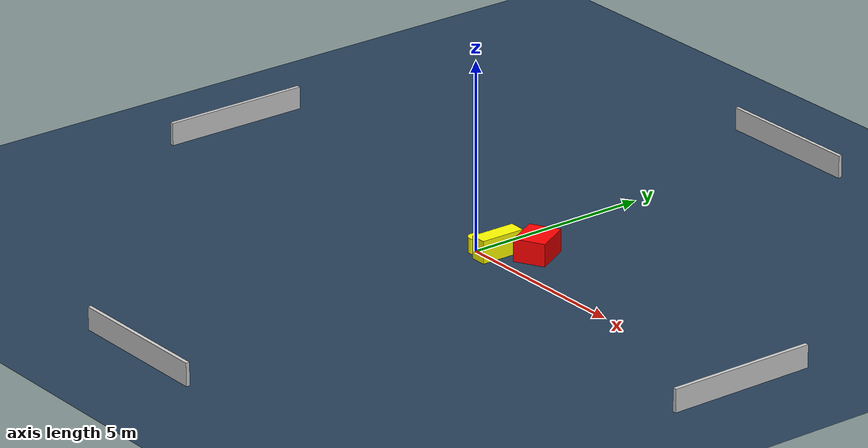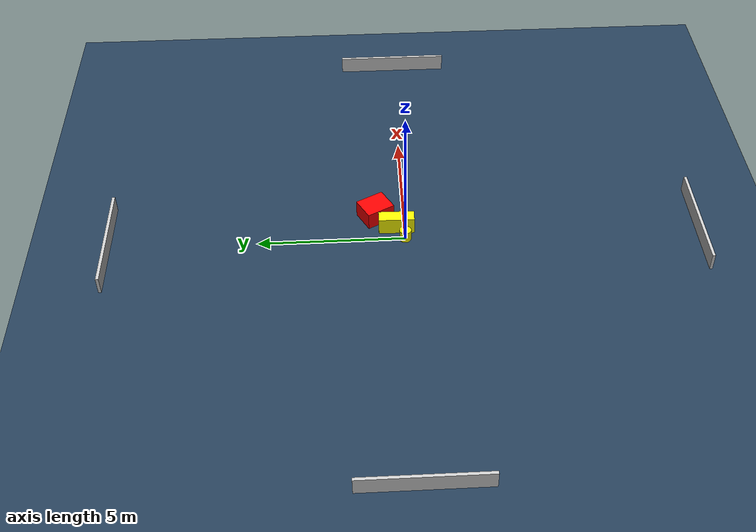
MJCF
<?xml version="1.0" ?>
<mujoco model="generated_environment">
  <option timestep="0.01" integrator="RK4" cone="elliptic"/>
  <default>
    <geom density="1"/>
  </default>
  <asset>
    <texture builtin="gradient" height="3072" name="skybox" rgb1="0.3 0.5 0.7" rgb2="0 0 0" type="skybox" width="512"/>
    <texture builtin="checker" height="300" name="groundplane" rgb1="0.2 0.3 0.4" rgb2="0.1 0.2 0.3" type="2d" width="300"/>
    <material name="groundplane" reflectance="0.2" texrepeat="5 5" texture="groundplane"/>
  </asset>
  <worldbody>
    <light dir="0 0 -1" directional="true" pos="0 0 1.5"/>
    <geom condim="3" friction="0.5 0.005 0.001" material="groundplane" name="floor" pos="0 0 0" size="0 0 0.05" type="plane"/>
    <body name="walls">
      <geom name="wall_1" condim="4" pos="-10.0 0.0 0.3" rgba="0.800000011920929 0.800000011920929 0.800000011920929 1.0" size="0.05 2.0 0.3" type="box"/>
      <geom name="wall_2" condim="4" pos="10.0 0.0 0.3" rgba="0.800000011920929 0.800000011920929 0.800000011920929 1.0" size="0.05 2.0 0.3" type="box"/>
      <geom name="wall_3" condim="4" pos="0.0 -10.0 0.3" rgba="0.800000011920929 0.800000011920929 0.800000011920929 1.0" size="2.0 0.05 0.3" type="box"/>
      <geom name="wall_4" condim="4" pos="0.0 10.0 0.3" rgba="0.800000011920929 0.800000011920929 0.800000011920929 1.0" size="2.0 0.05 0.3" type="box"/>
    </body>
    <body name="robot">
      <joint name="joint_x" type="slide" pos="0 0 0" axis="1 0 0"/>
      <joint name="joint_y" type="slide" pos="0 0 0" axis="0 1 0"/>
      <geom name="robot" type="cylinder" pos="0.0 0.0 0.2" size="0.2 0.2 0.0" mass="5.0" friction="1.0 0.005 0.0001" condim="4" rgba="1.0 1.0 0.0 1.0"/>
    </body>
    <body name="obstacle_1_movable">
      <geom name="obstacle_1_movable" condim="4" pos="0.5054966189536939 0.281067531973202 0.3" euler="0 0 179.40906212519482" friction="0.0 0.005 0.001" rgba="1.0 1.0 0.0 1.0" size="0.21727689914177345 0.6060422201519212 0.3" type="box" mass="0.1"/>
      <joint type="free"/>
    </body>
    <body name="obstacle_2_static">
      <geom name="obstacle_2_static" condim="4" pos="1.1649586876805857 0.9814482880521445 0.3" euler="0 0 28.623401296063324" friction="0.0 0.005 0.001" rgba="1.0 0.0 0.0 1.0" size="0.4179166940397169 0.5027830618137448 0.3" type="box"/>
    </body>
  </worldbody>
  <actuator>
    <motor name="actuator_x" joint="joint_x" gear="1" ctrlrange="-1 1"/>
    <motor name="actuator_y" joint="joint_y" gear="1" ctrlrange="-1 1"/>
  </actuator>
</mujoco>
